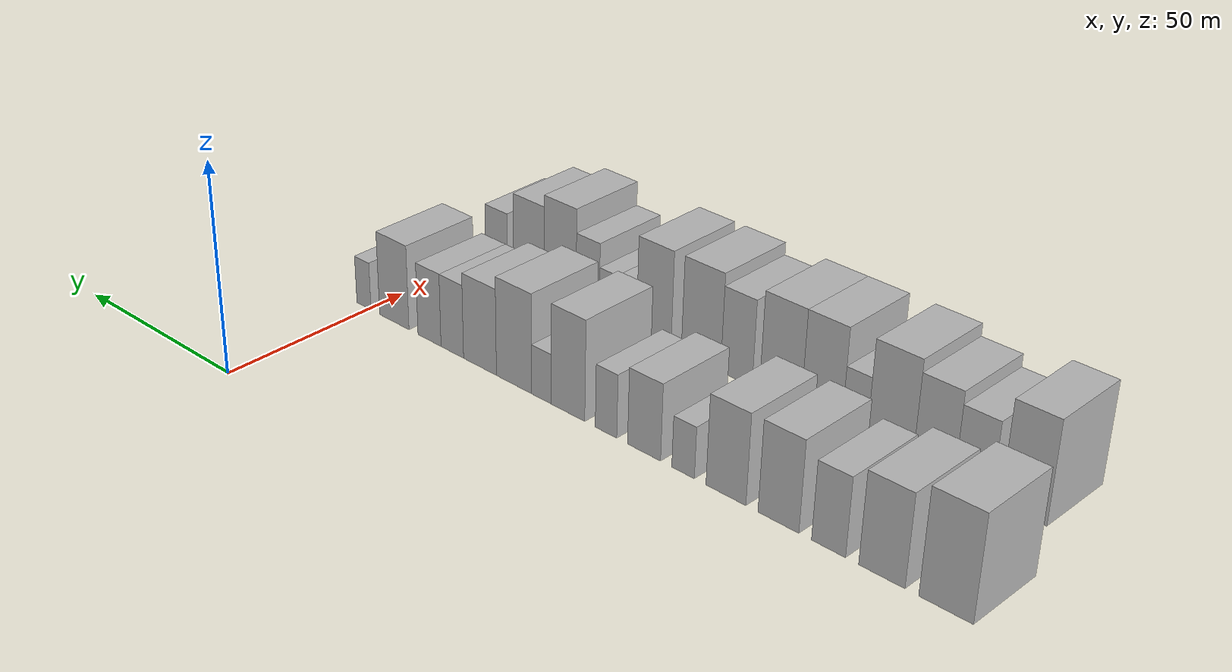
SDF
<sdf version="1.6">
 <world name="default">
  <model name="building_16">
   <static>1</static>
   <pose>50.0000 -157.0334 0 0.000000 0.000000 0.000000</pose>
   <link name="link">
    <pose>0 0 12.00 0 0 0</pose>
    <collision name="collision"><geometry><box><size>20.0000 11.7396 24.0000</size></box></geometry></collision>
    <visual name="visual">
     <cast_shadows>0</cast_shadows>
     <geometry><box><size>20.0000 11.7396 24.0000</size></box></geometry>
     <material>
      <script>
       <uri>model://HANNAS_wall/materials/scripts</uri>
       <uri>model://HANNAS_wall/materials/textures</uri>
       <name>vrc/HANNAS_wall</name>
      </script>
     </material>
    </visual>
   </link>
  </model>
  <model name="building_17">
   <static>1</static>
   <pose>50.0000 -142.9570 0 0.000000 0.000000 0.000000</pose>
   <link name="link">
    <pose>0 0 10.50 0 0 0</pose>
    <collision name="collision"><geometry><box><size>20.0000 10.4133 21.0000</size></box></geometry></collision>
    <visual name="visual">
     <cast_shadows>0</cast_shadows>
     <geometry><box><size>20.0000 10.4133 21.0000</size></box></geometry>
     <material>
      <script>
       <uri>model://HANNAS_wall/materials/scripts</uri>
       <uri>model://HANNAS_wall/materials/textures</uri>
       <name>vrc/HANNAS_wall</name>
      </script>
     </material>
    </visual>
   </link>
  </model>
  <model name="building_18">
   <static>1</static>
   <pose>50.0000 -130.7641 0 0.000000 0.000000 0.000000</pose>
   <link name="link">
    <pose>0 0 9.00 0 0 0</pose>
    <collision name="collision"><geometry><box><size>20.0000 7.9725 18.0000</size></box></geometry></collision>
    <visual name="visual">
     <cast_shadows>0</cast_shadows>
     <geometry><box><size>20.0000 7.9725 18.0000</size></box></geometry>
     <material>
      <script>
       <uri>model://HANNAS_wall/materials/scripts</uri>
       <uri>model://HANNAS_wall/materials/textures</uri>
       <name>vrc/HANNAS_wall</name>
      </script>
     </material>
    </visual>
   </link>
  </model>
  <model name="building_19">
   <static>1</static>
   <pose>50.0000 -118.8016 0 0.000000 0.000000 0.000000</pose>
   <link name="link">
    <pose>0 0 10.50 0 0 0</pose>
    <collision name="collision"><geometry><box><size>20.0000 9.9525 21.0000</size></box></geometry></collision>
    <visual name="visual">
     <cast_shadows>0</cast_shadows>
     <geometry><box><size>20.0000 9.9525 21.0000</size></box></geometry>
     <material>
      <script>
       <uri>model://HANNAS_wall/materials/scripts</uri>
       <uri>model://HANNAS_wall/materials/textures</uri>
       <name>vrc/HANNAS_wall</name>
      </script>
     </material>
    </visual>
   </link>
  </model>
  <model name="building_20">
   <static>1</static>
   <pose>50.0000 -105.7524 0 0.000000 0.000000 0.000000</pose>
   <link name="link">
    <pose>0 0 10.50 0 0 0</pose>
    <collision name="collision"><geometry><box><size>20.0000 10.1458 21.0000</size></box></geometry></collision>
    <visual name="visual">
     <cast_shadows>0</cast_shadows>
     <geometry><box><size>20.0000 10.1458 21.0000</size></box></geometry>
     <material>
      <script>
       <uri>model://HANNAS_wall/materials/scripts</uri>
       <uri>model://HANNAS_wall/materials/textures</uri>
       <name>vrc/HANNAS_wall</name>
      </script>
     </material>
    </visual>
   </link>
  </model>
  <model name="building_21">
   <static>1</static>
   <pose>50.0000 -94.7142 0 0.000000 0.000000 0.000000</pose>
   <link name="link">
    <pose>0 0 6.00 0 0 0</pose>
    <collision name="collision"><geometry><box><size>20.0000 5.9307 12.0000</size></box></geometry></collision>
    <visual name="visual">
     <cast_shadows>0</cast_shadows>
     <geometry><box><size>20.0000 5.9307 12.0000</size></box></geometry>
     <material>
      <script>
       <uri>model://HANNAS_wall/materials/scripts</uri>
       <uri>model://HANNAS_wall/materials/textures</uri>
       <name>vrc/HANNAS_wall</name>
      </script>
     </material>
    </visual>
   </link>
  </model>
  <model name="building_22">
   <static>1</static>
   <pose>50.0000 -84.2666 0 0.000000 0.000000 0.000000</pose>
   <link name="link">
    <pose>0 0 9.00 0 0 0</pose>
    <collision name="collision"><geometry><box><size>20.0000 8.9644 18.0000</size></box></geometry></collision>
    <visual name="visual">
     <cast_shadows>0</cast_shadows>
     <geometry><box><size>20.0000 8.9644 18.0000</size></box></geometry>
     <material>
      <script>
       <uri>model://HANNAS_wall/materials/scripts</uri>
       <uri>model://HANNAS_wall/materials/textures</uri>
       <name>vrc/HANNAS_wall</name>
      </script>
     </material>
    </visual>
   </link>
  </model>
  <model name="building_23">
   <static>1</static>
   <pose>50.0000 -73.7801 0 0.000000 0.000000 0.000000</pose>
   <link name="link">
    <pose>0 0 7.50 0 0 0</pose>
    <collision name="collision"><geometry><box><size>20.0000 6.0086 15.0000</size></box></geometry></collision>
    <visual name="visual">
     <cast_shadows>0</cast_shadows>
     <geometry><box><size>20.0000 6.0086 15.0000</size></box></geometry>
     <material>
      <script>
       <uri>model://HANNAS_wall/materials/scripts</uri>
       <uri>model://HANNAS_wall/materials/textures</uri>
       <name>vrc/HANNAS_wall</name>
      </script>
     </material>
    </visual>
   </link>
  </model>
  <model name="building_24">
   <static>1</static>
   <pose>50.0000 -62.9027 0 0.000000 0.000000 0.000000</pose>
   <link name="link">
    <pose>0 0 12.00 0 0 0</pose>
    <collision name="collision"><geometry><box><size>20.0000 9.7461 24.0000</size></box></geometry></collision>
    <visual name="visual">
     <cast_shadows>0</cast_shadows>
     <geometry><box><size>20.0000 9.7461 24.0000</size></box></geometry>
     <material>
      <script>
       <uri>model://HANNAS_wall/materials/scripts</uri>
       <uri>model://HANNAS_wall/materials/textures</uri>
       <name>vrc/HANNAS_wall</name>
      </script>
     </material>
    </visual>
   </link>
  </model>
  <model name="building_25">
   <static>1</static>
   <pose>50.0000 -55.1246 0 0.000000 0.000000 0.000000</pose>
   <link name="link">
    <pose>0 0 6.00 0 0 0</pose>
    <collision name="collision"><geometry><box><size>20.0000 5.8101 12.0000</size></box></geometry></collision>
    <visual name="visual">
     <cast_shadows>0</cast_shadows>
     <geometry><box><size>20.0000 5.8101 12.0000</size></box></geometry>
     <material>
      <script>
       <uri>model://HANNAS_wall/materials/scripts</uri>
       <uri>model://HANNAS_wall/materials/textures</uri>
       <name>vrc/HANNAS_wall</name>
      </script>
     </material>
    </visual>
   </link>
  </model>
  <model name="building_26">
   <static>1</static>
   <pose>50.0000 -46.8918 0 0.000000 0.000000 0.000000</pose>
   <link name="link">
    <pose>0 0 12.00 0 0 0</pose>
    <collision name="collision"><geometry><box><size>20.0000 10.6555 24.0000</size></box></geometry></collision>
    <visual name="visual">
     <cast_shadows>0</cast_shadows>
     <geometry><box><size>20.0000 10.6555 24.0000</size></box></geometry>
     <material>
      <script>
       <uri>model://HANNAS_wall/materials/scripts</uri>
       <uri>model://HANNAS_wall/materials/textures</uri>
       <name>vrc/HANNAS_wall</name>
      </script>
     </material>
    </visual>
   </link>
  </model>
  <model name="building_27">
   <static>1</static>
   <pose>50.0000 -36.4208 0 0.000000 0.000000 0.000000</pose>
   <link name="link">
    <pose>0 0 10.50 0 0 0</pose>
    <collision name="collision"><geometry><box><size>20.0000 10.2866 21.0000</size></box></geometry></collision>
    <visual name="visual">
     <cast_shadows>0</cast_shadows>
     <geometry><box><size>20.0000 10.2866 21.0000</size></box></geometry>
     <material>
      <script>
       <uri>model://HANNAS_wall/materials/scripts</uri>
       <uri>model://HANNAS_wall/materials/textures</uri>
       <name>vrc/HANNAS_wall</name>
      </script>
     </material>
    </visual>
   </link>
  </model>
  <model name="building_28">
   <static>1</static>
   <pose>50.0000 -27.6538 0 0.000000 0.000000 0.000000</pose>
   <link name="link">
    <pose>0 0 9.00 0 0 0</pose>
    <collision name="collision"><geometry><box><size>20.0000 7.2474 18.0000</size></box></geometry></collision>
    <visual name="visual">
     <cast_shadows>0</cast_shadows>
     <geometry><box><size>20.0000 7.2474 18.0000</size></box></geometry>
     <material>
      <script>
       <uri>model://HANNAS_wall/materials/scripts</uri>
       <uri>model://HANNAS_wall/materials/textures</uri>
       <name>vrc/HANNAS_wall</name>
      </script>
     </material>
    </visual>
   </link>
  </model>
  <model name="building_29">
   <static>1</static>
   <pose>50.0000 -20.2524 0 0.000000 0.000000 0.000000</pose>
   <link name="link">
    <pose>0 0 9.00 0 0 0</pose>
    <collision name="collision"><geometry><box><size>20.0000 7.5553 18.0000</size></box></geometry></collision>
    <visual name="visual">
     <cast_shadows>0</cast_shadows>
     <geometry><box><size>20.0000 7.5553 18.0000</size></box></geometry>
     <material>
      <script>
       <uri>model://HANNAS_wall/materials/scripts</uri>
       <uri>model://HANNAS_wall/materials/textures</uri>
       <name>vrc/HANNAS_wall</name>
      </script>
     </material>
    </visual>
   </link>
  </model>
  <model name="building_30">
   <static>1</static>
   <pose>50.0000 -8.5156 0 0.000000 0.000000 0.000000</pose>
   <link name="link">
    <pose>0 0 10.50 0 0 0</pose>
    <collision name="collision"><geometry><box><size>20.0000 9.9183 21.0000</size></box></geometry></collision>
    <visual name="visual">
     <cast_shadows>0</cast_shadows>
     <geometry><box><size>20.0000 9.9183 21.0000</size></box></geometry>
     <material>
      <script>
       <uri>model://HANNAS_wall/materials/scripts</uri>
       <uri>model://HANNAS_wall/materials/textures</uri>
       <name>vrc/HANNAS_wall</name>
      </script>
     </material>
    </visual>
   </link>
  </model>
  <model name="building_31">
   <static>1</static>
   <pose>50.0000 1.8954 0 0.000000 0.000000 0.000000</pose>
   <link name="link">
    <pose>0 0 6.00 0 0 0</pose>
    <collision name="collision"><geometry><box><size>20.0000 4.9037 12.0000</size></box></geometry></collision>
    <visual name="visual">
     <cast_shadows>0</cast_shadows>
     <geometry><box><size>20.0000 4.9037 12.0000</size></box></geometry>
     <material>
      <script>
       <uri>model://HANNAS_wall/materials/scripts</uri>
       <uri>model://HANNAS_wall/materials/textures</uri>
       <name>vrc/HANNAS_wall</name>
      </script>
     </material>
    </visual>
   </link>
  </model>
  <model name="building_79">
   <static>1</static>
   <pose>85.0000 -150.5645 0 0.000000 0.000000 0.000000</pose>
   <link name="link">
    <pose>0 0 12.00 0 0 0</pose>
    <collision name="collision"><geometry><box><size>20.0000 10.3867 24.0000</size></box></geometry></collision>
    <visual name="visual">
     <cast_shadows>0</cast_shadows>
     <geometry><box><size>20.0000 10.3867 24.0000</size></box></geometry>
     <material>
      <script>
       <uri>model://HANNAS_wall/materials/scripts</uri>
       <uri>model://HANNAS_wall/materials/textures</uri>
       <name>vrc/HANNAS_wall</name>
      </script>
     </material>
    </visual>
   </link>
  </model>
  <model name="building_80">
   <static>1</static>
   <pose>85.0000 -139.0347 0 0.000000 0.000000 0.000000</pose>
   <link name="link">
    <pose>0 0 9.00 0 0 0</pose>
    <collision name="collision"><geometry><box><size>20.0000 8.6728 18.0000</size></box></geometry></collision>
    <visual name="visual">
     <cast_shadows>0</cast_shadows>
     <geometry><box><size>20.0000 8.6728 18.0000</size></box></geometry>
     <material>
      <script>
       <uri>model://HANNAS_wall/materials/scripts</uri>
       <uri>model://HANNAS_wall/materials/textures</uri>
       <name>vrc/HANNAS_wall</name>
      </script>
     </material>
    </visual>
   </link>
  </model>
  <model name="building_81">
   <static>1</static>
   <pose>85.0000 -129.7623 0 0.000000 0.000000 0.000000</pose>
   <link name="link">
    <pose>0 0 10.50 0 0 0</pose>
    <collision name="collision"><geometry><box><size>20.0000 9.8722 21.0000</size></box></geometry></collision>
    <visual name="visual">
     <cast_shadows>0</cast_shadows>
     <geometry><box><size>20.0000 9.8722 21.0000</size></box></geometry>
     <material>
      <script>
       <uri>model://HANNAS_wall/materials/scripts</uri>
       <uri>model://HANNAS_wall/materials/textures</uri>
       <name>vrc/HANNAS_wall</name>
      </script>
     </material>
    </visual>
   </link>
  </model>
  <model name="building_82">
   <static>1</static>
   <pose>85.0000 -119.1501 0 0.000000 0.000000 0.000000</pose>
   <link name="link">
    <pose>0 0 12.00 0 0 0</pose>
    <collision name="collision"><geometry><box><size>20.0000 11.3521 24.0000</size></box></geometry></collision>
    <visual name="visual">
     <cast_shadows>0</cast_shadows>
     <geometry><box><size>20.0000 11.3521 24.0000</size></box></geometry>
     <material>
      <script>
       <uri>model://HANNAS_wall/materials/scripts</uri>
       <uri>model://HANNAS_wall/materials/textures</uri>
       <name>vrc/HANNAS_wall</name>
      </script>
     </material>
    </visual>
   </link>
  </model>
  <model name="building_83">
   <static>1</static>
   <pose>85.0000 -110.2947 0 0.000000 0.000000 0.000000</pose>
   <link name="link">
    <pose>0 0 7.50 0 0 0</pose>
    <collision name="collision"><geometry><box><size>20.0000 6.3588 15.0000</size></box></geometry></collision>
    <visual name="visual">
     <cast_shadows>0</cast_shadows>
     <geometry><box><size>20.0000 6.3588 15.0000</size></box></geometry>
     <material>
      <script>
       <uri>model://HANNAS_wall/materials/scripts</uri>
       <uri>model://HANNAS_wall/materials/textures</uri>
       <name>vrc/HANNAS_wall</name>
      </script>
     </material>
    </visual>
   </link>
  </model>
  <model name="building_84">
   <static>1</static>
   <pose>85.0000 -101.8480 0 0.000000 0.000000 0.000000</pose>
   <link name="link">
    <pose>0 0 12.00 0 0 0</pose>
    <collision name="collision"><geometry><box><size>20.0000 10.5346 24.0000</size></box></geometry></collision>
    <visual name="visual">
     <cast_shadows>0</cast_shadows>
     <geometry><box><size>20.0000 10.5346 24.0000</size></box></geometry>
     <material>
      <script>
       <uri>model://HANNAS_wall/materials/scripts</uri>
       <uri>model://HANNAS_wall/materials/textures</uri>
       <name>vrc/HANNAS_wall</name>
      </script>
     </material>
    </visual>
   </link>
  </model>
  <model name="building_85">
   <static>1</static>
   <pose>85.0000 -91.0212 0 0.000000 0.000000 0.000000</pose>
   <link name="link">
    <pose>0 0 12.00 0 0 0</pose>
    <collision name="collision"><geometry><box><size>20.0000 11.1191 24.0000</size></box></geometry></collision>
    <visual name="visual">
     <cast_shadows>0</cast_shadows>
     <geometry><box><size>20.0000 11.1191 24.0000</size></box></geometry>
     <material>
      <script>
       <uri>model://HANNAS_wall/materials/scripts</uri>
       <uri>model://HANNAS_wall/materials/textures</uri>
       <name>vrc/HANNAS_wall</name>
      </script>
     </material>
    </visual>
   </link>
  </model>
  <model name="building_86">
   <static>1</static>
   <pose>85.0000 -79.0819 0 0.000000 0.000000 0.000000</pose>
   <link name="link">
    <pose>0 0 10.50 0 0 0</pose>
    <collision name="collision"><geometry><box><size>20.0000 8.7594 21.0000</size></box></geometry></collision>
    <visual name="visual">
     <cast_shadows>0</cast_shadows>
     <geometry><box><size>20.0000 8.7594 21.0000</size></box></geometry>
     <material>
      <script>
       <uri>model://HANNAS_wall/materials/scripts</uri>
       <uri>model://HANNAS_wall/materials/textures</uri>
       <name>vrc/HANNAS_wall</name>
      </script>
     </material>
    </visual>
   </link>
  </model>
  <model name="building_87">
   <static>1</static>
   <pose>85.0000 -69.0846 0 0.000000 0.000000 0.000000</pose>
   <link name="link">
    <pose>0 0 12.00 0 0 0</pose>
    <collision name="collision"><geometry><box><size>20.0000 11.2352 24.0000</size></box></geometry></collision>
    <visual name="visual">
     <cast_shadows>0</cast_shadows>
     <geometry><box><size>20.0000 11.2352 24.0000</size></box></geometry>
     <material>
      <script>
       <uri>model://HANNAS_wall/materials/scripts</uri>
       <uri>model://HANNAS_wall/materials/textures</uri>
       <name>vrc/HANNAS_wall</name>
      </script>
     </material>
    </visual>
   </link>
  </model>
  <model name="building_88">
   <static>1</static>
   <pose>85.0000 -55.3323 0 0.000000 0.000000 0.000000</pose>
   <link name="link">
    <pose>0 0 12.00 0 0 0</pose>
    <collision name="collision"><geometry><box><size>20.0000 10.2693 24.0000</size></box></geometry></collision>
    <visual name="visual">
     <cast_shadows>0</cast_shadows>
     <geometry><box><size>20.0000 10.2693 24.0000</size></box></geometry>
     <material>
      <script>
       <uri>model://HANNAS_wall/materials/scripts</uri>
       <uri>model://HANNAS_wall/materials/textures</uri>
       <name>vrc/HANNAS_wall</name>
      </script>
     </material>
    </visual>
   </link>
  </model>
  <model name="building_89">
   <static>1</static>
   <pose>85.0000 -47.2056 0 0.000000 0.000000 0.000000</pose>
   <link name="link">
    <pose>0 0 6.00 0 0 0</pose>
    <collision name="collision"><geometry><box><size>20.0000 5.9842 12.0000</size></box></geometry></collision>
    <visual name="visual">
     <cast_shadows>0</cast_shadows>
     <geometry><box><size>20.0000 5.9842 12.0000</size></box></geometry>
     <material>
      <script>
       <uri>model://HANNAS_wall/materials/scripts</uri>
       <uri>model://HANNAS_wall/materials/textures</uri>
       <name>vrc/HANNAS_wall</name>
      </script>
     </material>
    </visual>
   </link>
  </model>
  <model name="building_90">
   <static>1</static>
   <pose>85.0000 -41.4918 0 0.000000 0.000000 0.000000</pose>
   <link name="link">
    <pose>0 0 6.00 0 0 0</pose>
    <collision name="collision"><geometry><box><size>20.0000 5.4434 12.0000</size></box></geometry></collision>
    <visual name="visual">
     <cast_shadows>0</cast_shadows>
     <geometry><box><size>20.0000 5.4434 12.0000</size></box></geometry>
     <material>
      <script>
       <uri>model://HANNAS_wall/materials/scripts</uri>
       <uri>model://HANNAS_wall/materials/textures</uri>
       <name>vrc/HANNAS_wall</name>
      </script>
     </material>
    </visual>
   </link>
  </model>
  <model name="building_91">
   <static>1</static>
   <pose>85.0000 -35.1251 0 0.000000 0.000000 0.000000</pose>
   <link name="link">
    <pose>0 0 9.00 0 0 0</pose>
    <collision name="collision"><geometry><box><size>20.0000 7.2901 18.0000</size></box></geometry></collision>
    <visual name="visual">
     <cast_shadows>0</cast_shadows>
     <geometry><box><size>20.0000 7.2901 18.0000</size></box></geometry>
     <material>
      <script>
       <uri>model://HANNAS_wall/materials/scripts</uri>
       <uri>model://HANNAS_wall/materials/textures</uri>
       <name>vrc/HANNAS_wall</name>
      </script>
     </material>
    </visual>
   </link>
  </model>
  <model name="building_92">
   <static>1</static>
   <pose>85.0000 -26.3903 0 0.000000 0.000000 0.000000</pose>
   <link name="link">
    <pose>0 0 12.00 0 0 0</pose>
    <collision name="collision"><geometry><box><size>20.0000 10.1794 24.0000</size></box></geometry></collision>
    <visual name="visual">
     <cast_shadows>0</cast_shadows>
     <geometry><box><size>20.0000 10.1794 24.0000</size></box></geometry>
     <material>
      <script>
       <uri>model://HANNAS_wall/materials/scripts</uri>
       <uri>model://HANNAS_wall/materials/textures</uri>
       <name>vrc/HANNAS_wall</name>
      </script>
     </material>
    </visual>
   </link>
  </model>
  <model name="building_93">
   <static>1</static>
   <pose>85.0000 -16.1994 0 0.000000 0.000000 0.000000</pose>
   <link name="link">
    <pose>0 0 10.50 0 0 0</pose>
    <collision name="collision"><geometry><box><size>20.0000 10.2025 21.0000</size></box></geometry></collision>
    <visual name="visual">
     <cast_shadows>0</cast_shadows>
     <geometry><box><size>20.0000 10.2025 21.0000</size></box></geometry>
     <material>
      <script>
       <uri>model://HANNAS_wall/materials/scripts</uri>
       <uri>model://HANNAS_wall/materials/textures</uri>
       <name>vrc/HANNAS_wall</name>
      </script>
     </material>
    </visual>
   </link>
  </model>
  <model name="building_94">
   <static>1</static>
   <pose>85.0000 -5.3818 0 0.000000 0.000000 0.000000</pose>
   <link name="link">
    <pose>0 0 7.50 0 0 0</pose>
    <collision name="collision"><geometry><box><size>20.0000 7.4328 15.0000</size></box></geometry></collision>
    <visual name="visual">
     <cast_shadows>0</cast_shadows>
     <geometry><box><size>20.0000 7.4328 15.0000</size></box></geometry>
     <material>
      <script>
       <uri>model://HANNAS_wall/materials/scripts</uri>
       <uri>model://HANNAS_wall/materials/textures</uri>
       <name>vrc/HANNAS_wall</name>
      </script>
     </material>
    </visual>
   </link>
  </model>
 </world>
</sdf>
